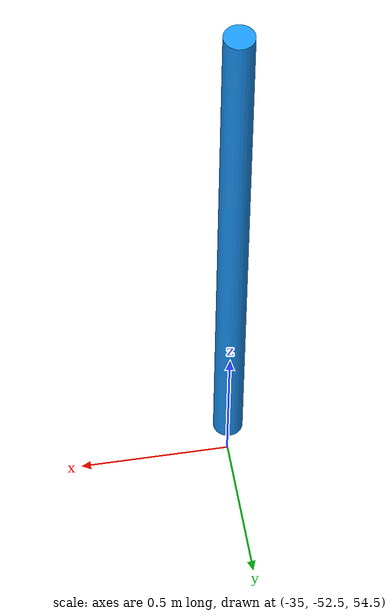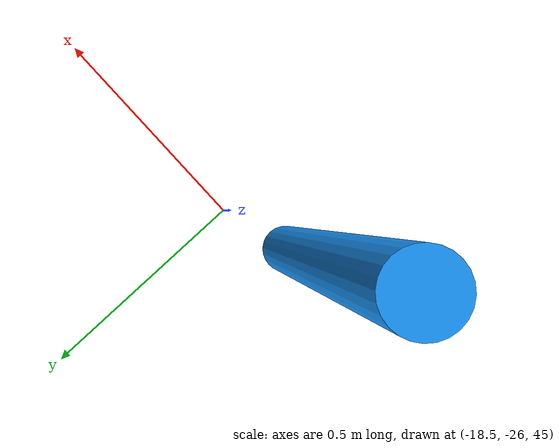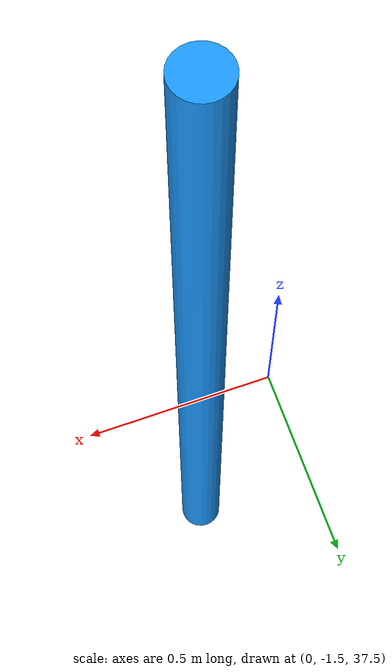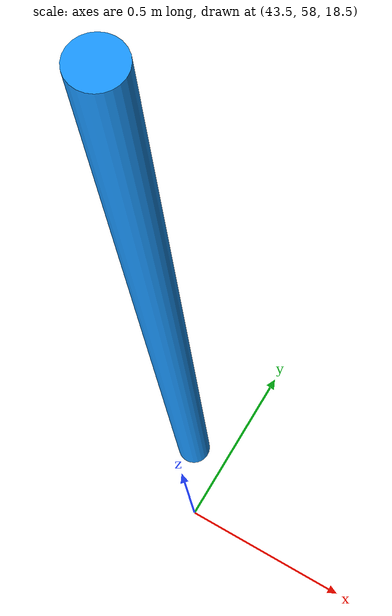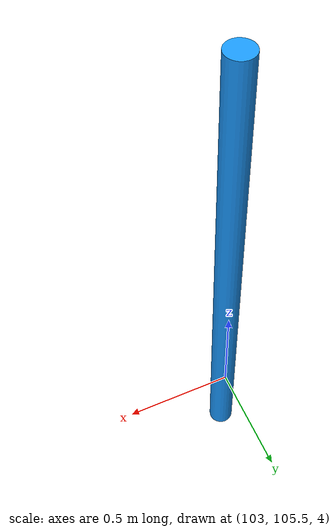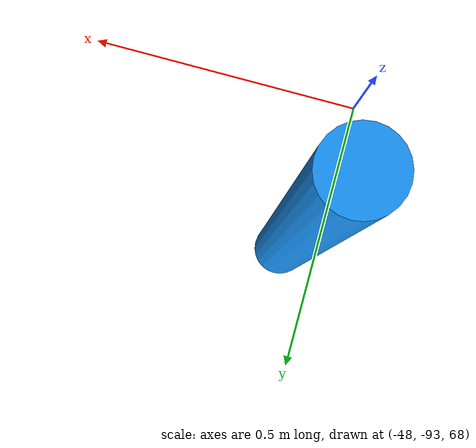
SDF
<sdf version="1.9">
 <world name="jezero_rim">
  <physics name="1ms" type="ignored">
   <max_step_size>0.001</max_step_size>
   <real_time_factor>1</real_time_factor>
  </physics>
  <gravity>0 0 -3.721</gravity>
  <plugin filename="gz-sim-physics-system" name="gz::sim::systems::Physics"/>
  <plugin filename="gz-sim-user-commands-system" name="gz::sim::systems::UserCommands"/>
  <plugin filename="gz-sim-scene-broadcaster-system" name="gz::sim::systems::SceneBroadcaster"/>
  <scene><ambient>0.5 0.4 0.35 1</ambient><background>0.85 0.65 0.50 1</background><grid>false</grid></scene>
  <light type="directional" name="sun">
   <pose>0 0 100 0 0 0</pose>
   <diffuse>0.9 0.85 0.8 1</diffuse>
   <direction>-0.5 0.3 -0.8</direction>
  </light>
  <model name="waypoint_sol1244">
   <static>true</static>
   <pose>103.14 105.73 5.14 0 0 0</pose>
   <link name="link">
    <visual name="v">
     <geometry><cylinder><radius>0.05</radius><length>2.0</length></cylinder></geometry>
     <material><ambient>0.1 0.6 1 1</ambient><diffuse>0.1 0.6 1 1</diffuse></material>
    </visual>
   </link>
  </model>
  <model name="waypoint_sol1246">
   <static>true</static>
   <pose>43.37 58.2 19.39 0 0 0</pose>
   <link name="link">
    <visual name="v">
     <geometry><cylinder><radius>0.05</radius><length>2.0</length></cylinder></geometry>
     <material><ambient>0.1 0.6 1 1</ambient><diffuse>0.1 0.6 1 1</diffuse></material>
    </visual>
   </link>
  </model>
  <model name="waypoint_sol1247">
   <static>true</static>
   <pose>0.27 -1.28 38.28 0 0 0</pose>
   <link name="link">
    <visual name="v">
     <geometry><cylinder><radius>0.05</radius><length>2.0</length></cylinder></geometry>
     <material><ambient>0.1 0.6 1 1</ambient><diffuse>0.1 0.6 1 1</diffuse></material>
    </visual>
   </link>
  </model>
  <model name="waypoint_sol1250">
   <static>true</static>
   <pose>-18.65 -26.04 46.15 0 0 0</pose>
   <link name="link">
    <visual name="v">
     <geometry><cylinder><radius>0.05</radius><length>2.0</length></cylinder></geometry>
     <material><ambient>0.1 0.6 1 1</ambient><diffuse>0.1 0.6 1 1</diffuse></material>
    </visual>
   </link>
  </model>
  <model name="waypoint_sol1251">
   <static>true</static>
   <pose>-35.02 -52.61 55.48 0 0 0</pose>
   <link name="link">
    <visual name="v">
     <geometry><cylinder><radius>0.05</radius><length>2.0</length></cylinder></geometry>
     <material><ambient>0.1 0.6 1 1</ambient><diffuse>0.1 0.6 1 1</diffuse></material>
    </visual>
   </link>
  </model>
  <model name="waypoint_sol1252">
   <static>true</static>
   <pose>-47.94 -92.72 68.78 0 0 0</pose>
   <link name="link">
    <visual name="v">
     <geometry><cylinder><radius>0.05</radius><length>2.0</length></cylinder></geometry>
     <material><ambient>0.1 0.6 1 1</ambient><diffuse>0.1 0.6 1 1</diffuse></material>
    </visual>
   </link>
  </model>
 </world>
</sdf>
